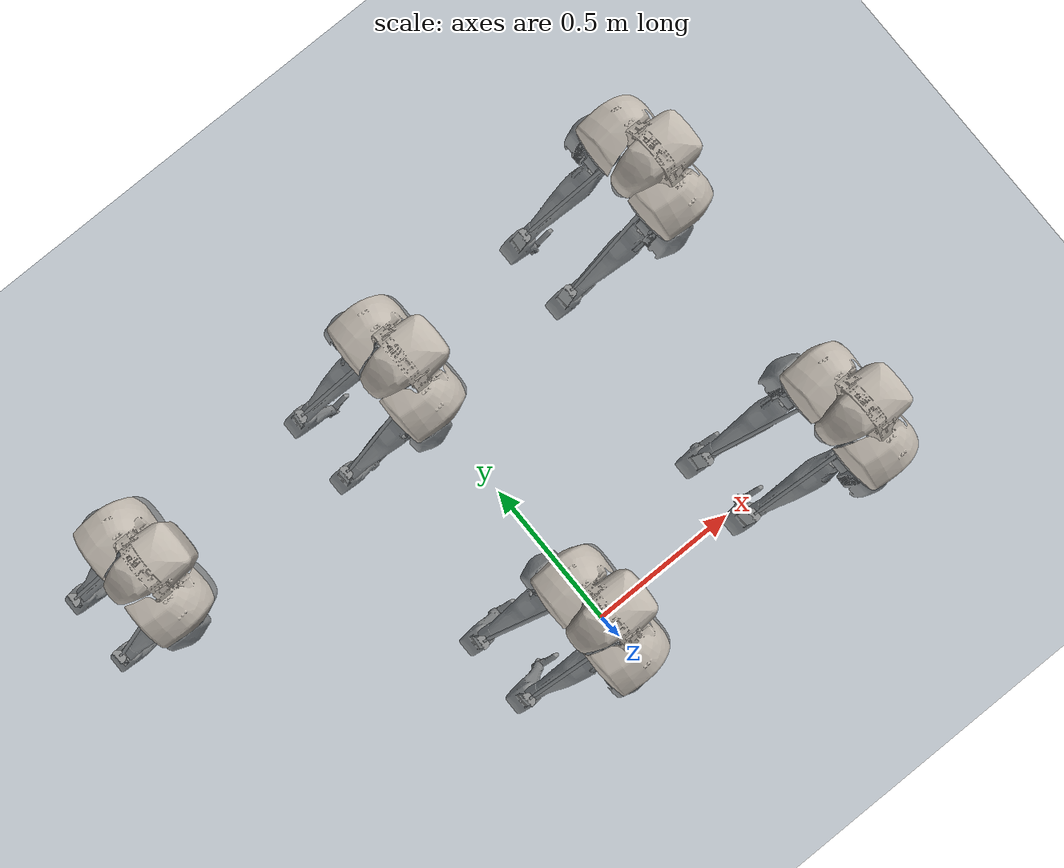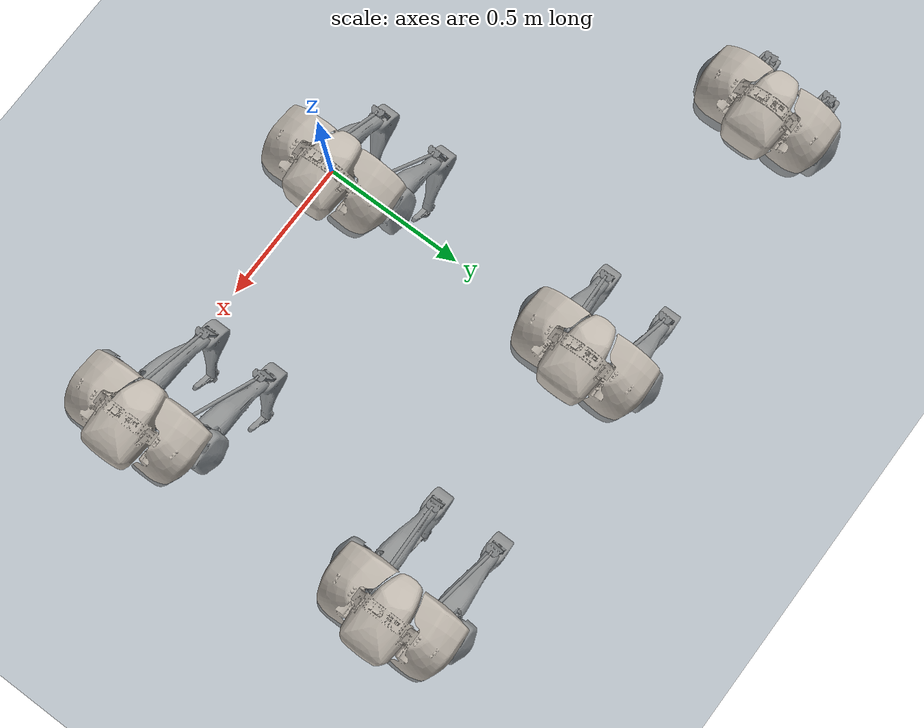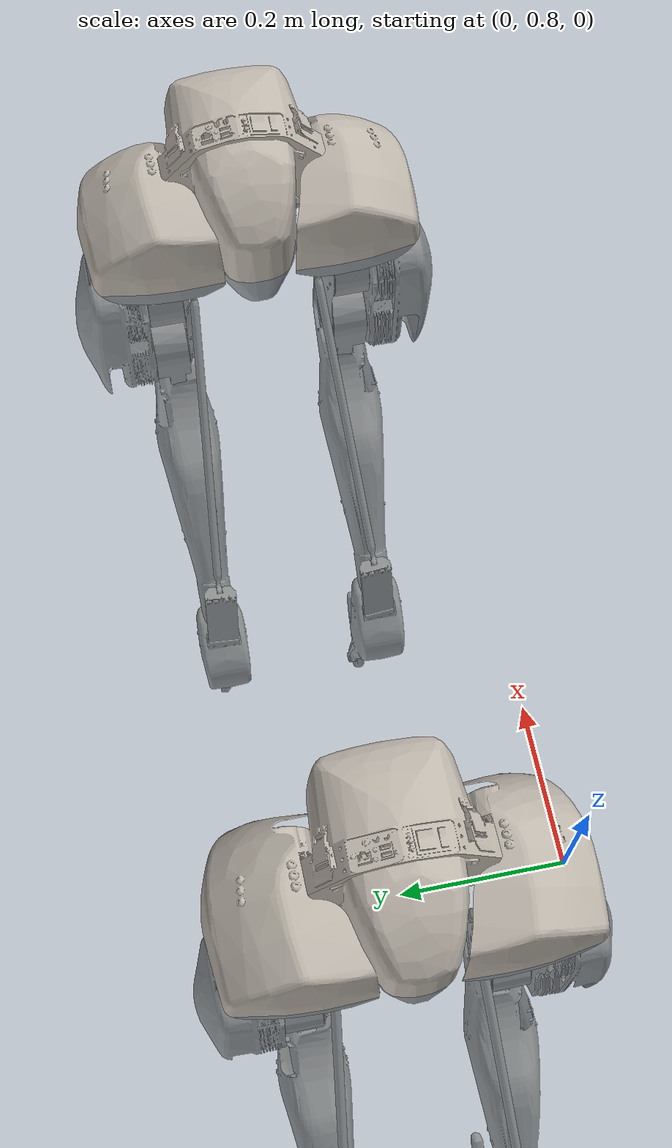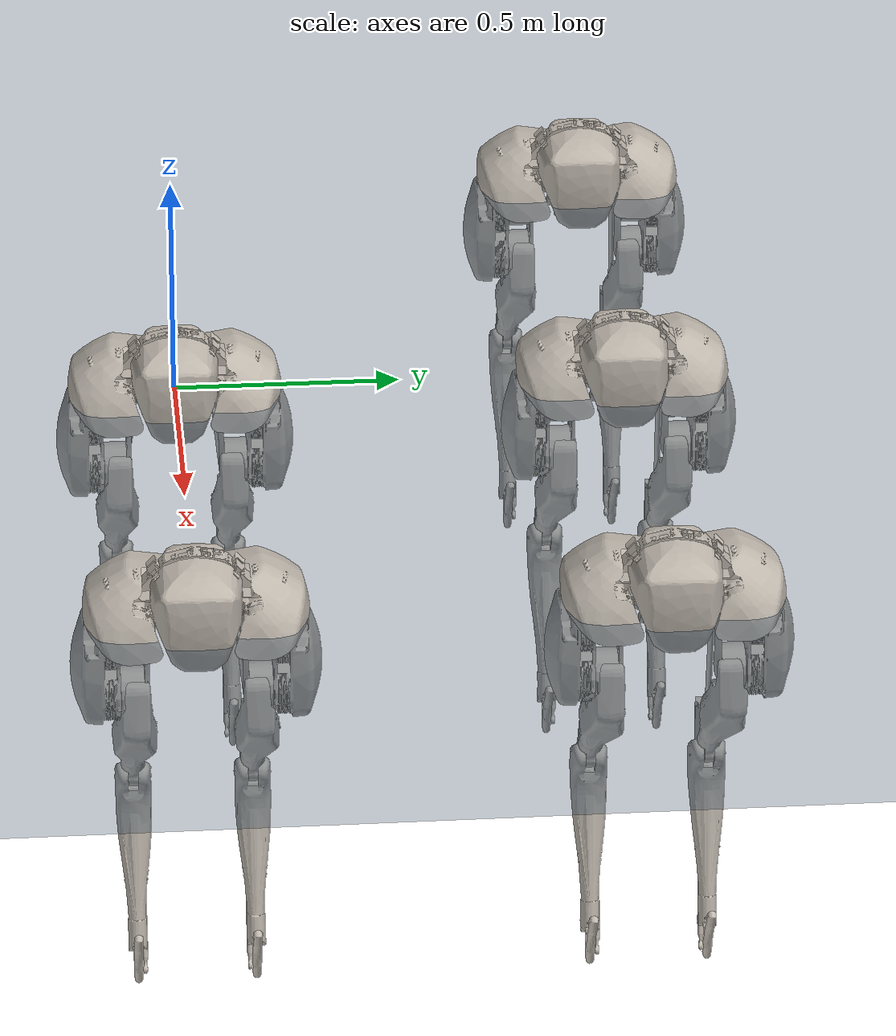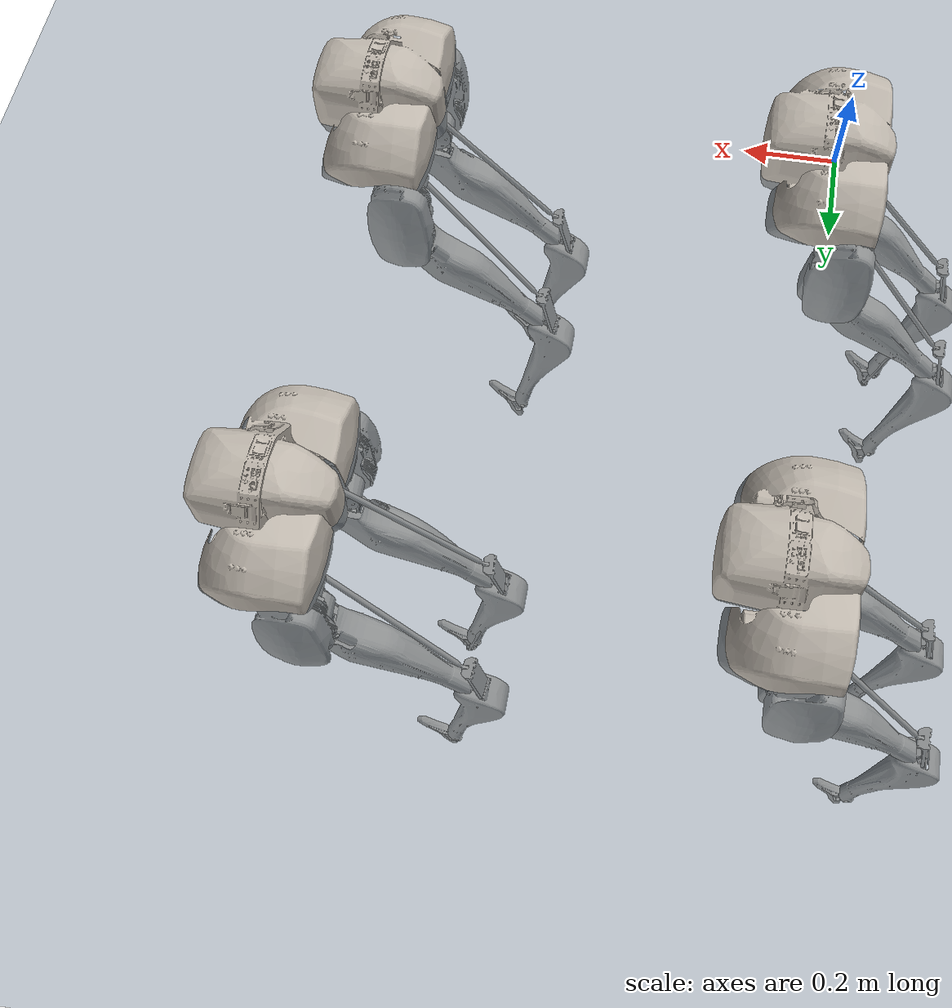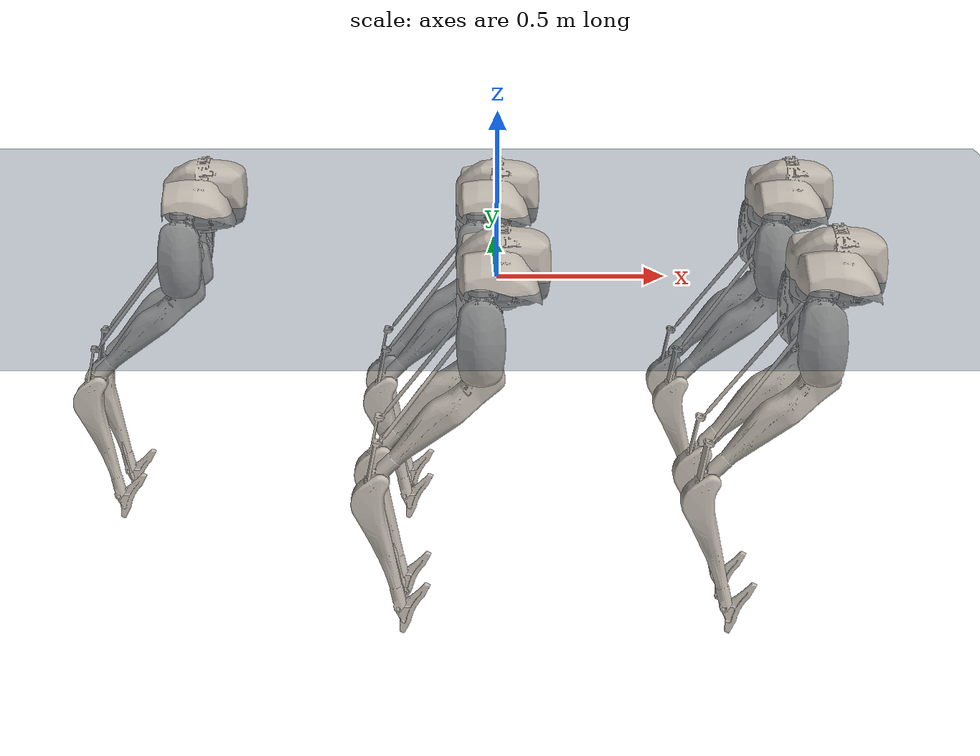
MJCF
<mujoco model="cassie scene">
  <include file="combined_model.xml" />

  <statistic center="0 0 0.55" extent="1.1" />

  <visual>
    <headlight diffuse="0.6 0.6 0.6" ambient="0.3 0.3 0.3" specular="0 0 0" />
    <rgba haze="0.15 0.25 0.35 1" />
    <global azimuth="150" elevation="-20" />
  </visual>

  <asset>
    <texture type="skybox" builtin="gradient" rgb1="0.3 0.5 0.7" rgb2="0 0 0" width="512" height="3072" />
    <texture type="2d" name="groundplane" builtin="checker" mark="edge" rgb1="0.2 0.3 0.4" rgb2="0.1 0.2 0.3" markrgb="0.8 0.8 0.8" width="300" height="300" />
    <material name="groundplane" texture="groundplane" texuniform="true" texrepeat="5 5" reflectance="0.2" />
  </asset>

  <worldbody>
    <light pos="0 0 3" dir="0 0 -1" directional="false" />
    <geom name="floor" size="0 0 .125" type="plane" material="groundplane" conaffinity="15" condim="3" />
  </worldbody>
</mujoco>
